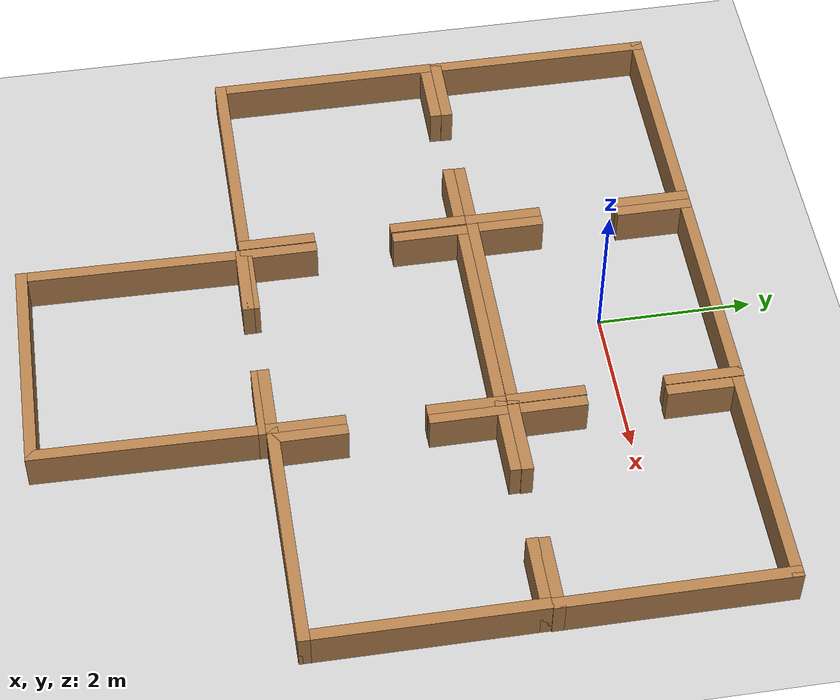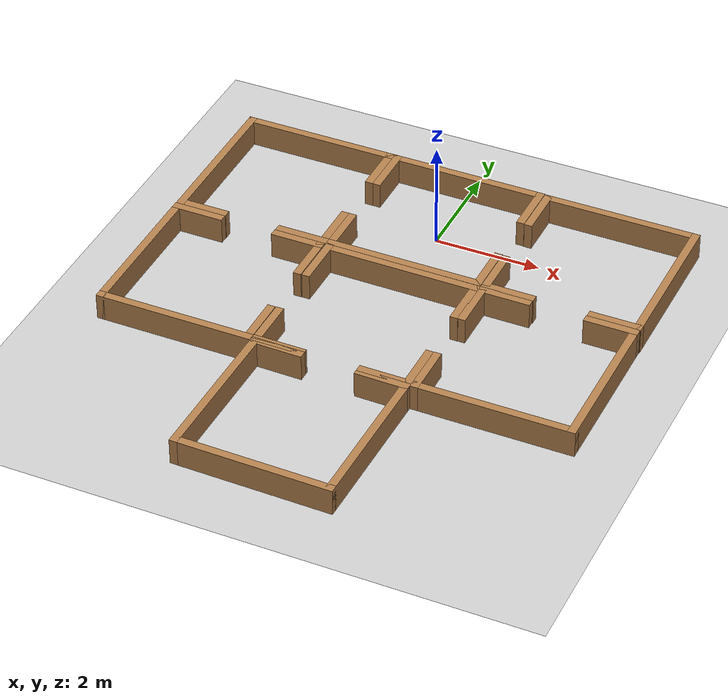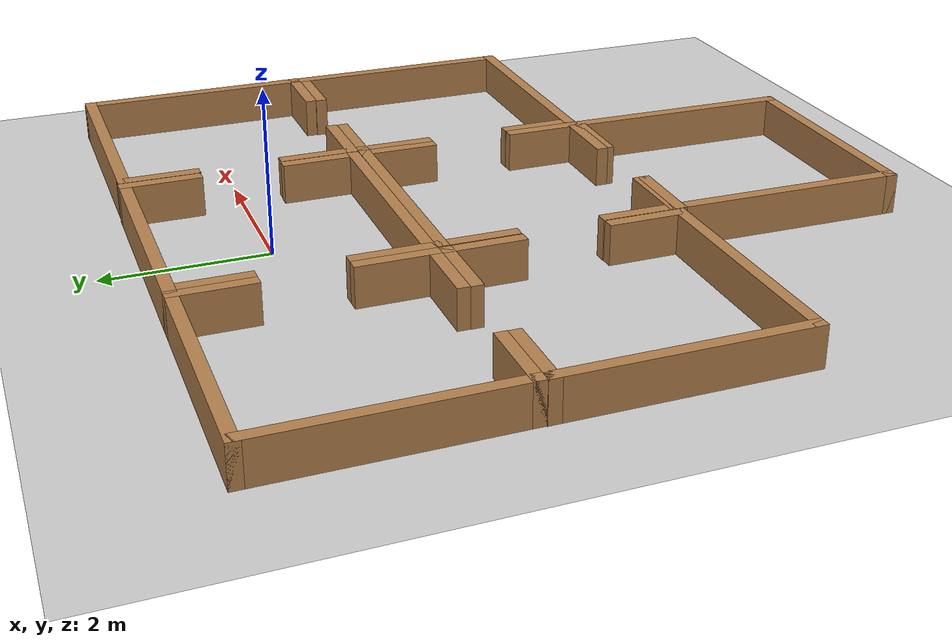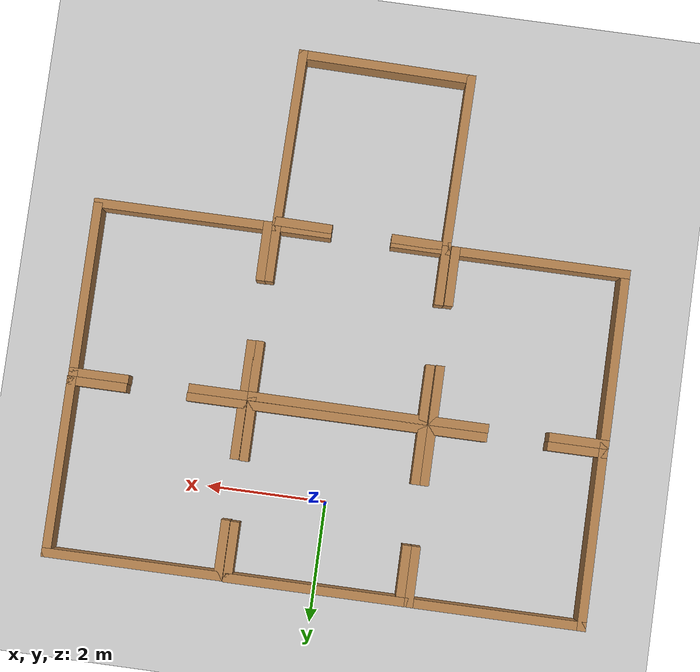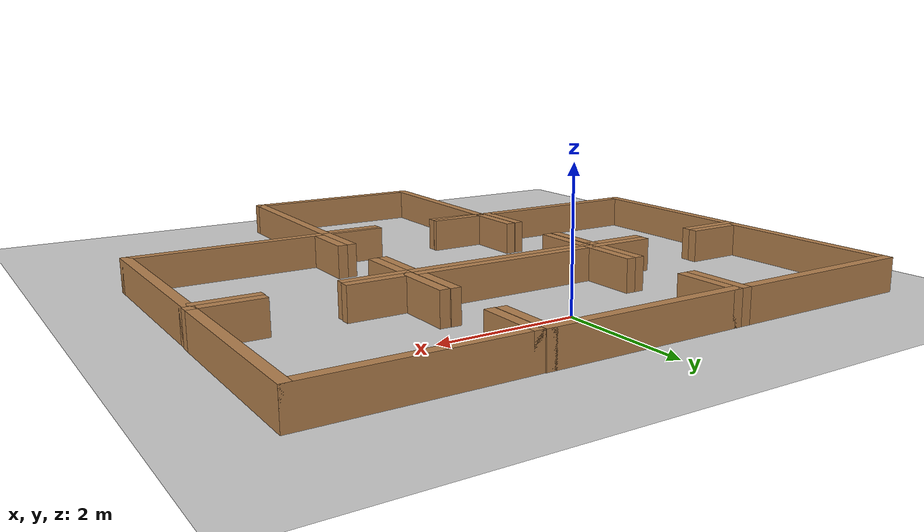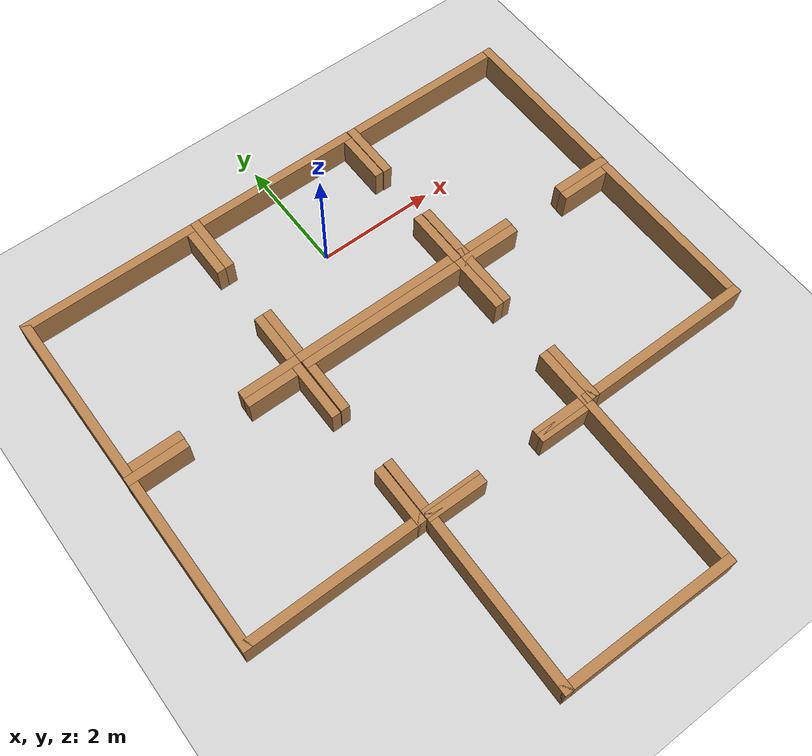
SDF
<sdf version="1.7">
 <world name="default">
  <light name="sun" type="directional">
   <pose>0 0 10 0 -0 0</pose>
   <diffuse>0.8 0.8 0.8 1</diffuse>
   <specular>0.2 0.2 0.2 1</specular>
   <attenuation>
    <range>1000</range>
    <constant>0.9</constant>
    <linear>0.01</linear>
    <quadratic>0.001</quadratic>
   </attenuation>
   <direction>-0.5 0.1 -0.9</direction>
   <spot><inner_angle>0</inner_angle><outer_angle>0</outer_angle><falloff>0</falloff></spot>
  </light>
  <model name="ground_plane">
   <static>1</static>
   <link name="link">
    <collision name="collision">
     <geometry><plane><normal>0 0 1</normal><size>100 100</size></plane></geometry>
     <surface>
      <contact><collide_bitmask>65535</collide_bitmask></contact>
      <friction><ode><mu>100</mu><mu2>50</mu2></ode></friction>
     </surface>
    </collision>
    <visual name="visual">
     <cast_shadows>0</cast_shadows>
     <geometry><plane><normal>0 0 1</normal><size>100 100</size></plane></geometry>
     <material>
      <script><uri>file://media/materials/scripts/gazebo.material</uri><name>Gazebo/Grey</name></script>
     </material>
    </visual>
   </link>
  </model>
  <physics type="ode">
   <real_time_update_rate>1000</real_time_update_rate>
   <max_step_size>0.001</max_step_size>
   <real_time_factor>1</real_time_factor>
   <ode>
    <solver>
     <type>quick</type>
     <iters>150</iters>
     <precon_iters>0</precon_iters>
     <sor>1.4</sor>
     <use_dynamic_moi_rescaling>1</use_dynamic_moi_rescaling>
    </solver>
    <constraints>
     <cfm>1e-05</cfm>
     <erp>0.2</erp>
     <contact_max_correcting_vel>2000</contact_max_correcting_vel>
     <contact_surface_layer>0.01</contact_surface_layer>
    </constraints>
   </ode>
  </physics>
  <model name="s_0_0">
   <link name="Wall_0">
    <collision name="Wall_0_Collision">
     <geometry><box><size>3 0.15 0.5</size></box></geometry>
     <pose>0 0 0.25 0 -0 0</pose>
    </collision>
    <visual name="Wall_0_Visual">
     <pose>0 0 0.25 0 -0 0</pose>
     <geometry><box><size>3 0.15 0.5</size></box></geometry>
     <material>
      <script><uri>file://media/materials/scripts/gazebo.material</uri><name>Gazebo/Wood</name></script>
      <ambient>1 1 1 1</ambient>
     </material>
    </visual>
    <pose>0 1.425 0 0 -0 0</pose>
   </link>
   <link name="Wall_2">
    <collision name="Wall_2_Collision">
     <geometry><box><size>1 0.15 0.5</size></box></geometry>
     <pose>0 0 0.25 0 -0 0</pose>
    </collision>
    <visual name="Wall_2_Visual">
     <pose>0 0 0.25 0 -0 0</pose>
     <geometry><box><size>1 0.15 0.5</size></box></geometry>
     <material>
      <script><uri>file://media/materials/scripts/gazebo.material</uri><name>Gazebo/Wood</name></script>
      <ambient>1 1 1 1</ambient>
     </material>
    </visual>
    <pose>-1.425 -1 0 0 0 -1.5708</pose>
   </link>
   <link name="Wall_2a">
    <collision name="Wall_2a_Collision">
     <geometry><box><size>1 0.15 0.5</size></box></geometry>
     <pose>0 0 0.25 0 -0 0</pose>
    </collision>
    <visual name="Wall_2a_Visual">
     <pose>0 0 0.25 0 -0 0</pose>
     <geometry><box><size>1 0.15 0.5</size></box></geometry>
     <material>
      <script><uri>file://media/materials/scripts/gazebo.material</uri><name>Gazebo/Wood</name></script>
      <ambient>1 1 1 1</ambient>
     </material>
    </visual>
    <pose>-1.425 1 0 0 0 -1.5708</pose>
   </link>
   <link name="Wall_3">
    <collision name="Wall_3_Collision">
     <geometry><box><size>3 0.15 0.5</size></box></geometry>
     <pose>0 0 0.25 0 -0 0</pose>
    </collision>
    <visual name="Wall_3_Visual">
     <pose>0 0 0.25 0 -0 0</pose>
     <geometry><box><size>3 0.15 0.5</size></box></geometry>
     <material>
      <script><uri>file://media/materials/scripts/gazebo.material</uri><name>Gazebo/Wood</name></script>
      <ambient>1 1 1 1</ambient>
     </material>
    </visual>
    <pose>0 -1.425 0 0 -0 0</pose>
   </link>
   <link name="Wall_4">
    <collision name="Wall_4_Collision">
     <geometry><box><size>1 0.15 0.5</size></box></geometry>
     <pose>0 0 0.25 0 -0 0</pose>
    </collision>
    <visual name="Wall_4_Visual">
     <pose>0 0 0.25 0 -0 0</pose>
     <geometry><box><size>1 0.15 0.5</size></box></geometry>
     <material>
      <script><uri>file://media/materials/scripts/gazebo.material</uri><name>Gazebo/Wood</name></script>
      <ambient>1 1 1 1</ambient>
     </material>
    </visual>
    <pose>1.425 -1 0 0 -0 1.5708</pose>
   </link>
   <link name="Wall_4a">
    <collision name="Wall_4a_Collision">
     <geometry><box><size>1 0.15 0.5</size></box></geometry>
     <pose>0 0 0.25 0 -0 0</pose>
    </collision>
    <visual name="Wall_4a_Visual">
     <pose>0 0 0.25 0 -0 0</pose>
     <geometry><box><size>1 0.15 0.5</size></box></geometry>
     <material>
      <script><uri>file://media/materials/scripts/gazebo.material</uri><name>Gazebo/Wood</name></script>
      <ambient>1 1 1 1</ambient>
     </material>
    </visual>
    <pose>1.425 1 0 0 -0 1.5708</pose>
   </link>
   <static>1</static>
  </model>
  <model name="s_6_0">
   <pose>3.00646 -0.009727 0 0 -0 3.14159</pose>
   <link name="Wall_0">
    <collision name="Wall_0_Collision">
     <geometry><box><size>1 0.15 0.5</size></box></geometry>
     <pose>0 0 0.25 0 -0 0</pose>
    </collision>
    <visual name="Wall_0_Visual">
     <pose>0 0 0.25 0 -0 0</pose>
     <geometry><box><size>1 0.15 0.5</size></box></geometry>
     <material>
      <script><uri>file://media/materials/scripts/gazebo.material</uri><name>Gazebo/Wood</name></script>
      <ambient>1 1 1 1</ambient>
     </material>
    </visual>
    <pose>-1 1.425 0 0 -0 0</pose>
   </link>
   <link name="Wall_0a">
    <collision name="Wall_0a_Collision">
     <geometry><box><size>1 0.15 0.5</size></box></geometry>
     <pose>0 0 0.25 0 -0 0</pose>
    </collision>
    <visual name="Wall_0a_Visual">
     <pose>0 0 0.25 0 -0 0</pose>
     <geometry><box><size>1 0.15 0.5</size></box></geometry>
     <material>
      <script><uri>file://media/materials/scripts/gazebo.material</uri><name>Gazebo/Wood</name></script>
      <ambient>1 1 1 1</ambient>
     </material>
    </visual>
    <pose>1 1.425 0 0 -0 0</pose>
   </link>
   <link name="Wall_2">
    <collision name="Wall_2_Collision">
     <geometry><box><size>3 0.15 0.5</size></box></geometry>
     <pose>0 0 0.25 0 -0 0</pose>
    </collision>
    <visual name="Wall_2_Visual">
     <pose>0 0 0.25 0 -0 0</pose>
     <geometry><box><size>3 0.15 0.5</size></box></geometry>
     <material>
      <script><uri>file://media/materials/scripts/gazebo.material</uri><name>Gazebo/Wood</name></script>
      <ambient>1 1 1 1</ambient>
     </material>
    </visual>
    <pose>-1.425 0 0 0 0 -1.5708</pose>
   </link>
   <link name="Wall_3">
    <collision name="Wall_3_Collision">
     <geometry><box><size>3 0.15 0.5</size></box></geometry>
     <pose>0 0 0.25 0 -0 0</pose>
    </collision>
    <visual name="Wall_3_Visual">
     <pose>0 0 0.25 0 -0 0</pose>
     <geometry><box><size>3 0.15 0.5</size></box></geometry>
     <material>
      <script><uri>file://media/materials/scripts/gazebo.material</uri><name>Gazebo/Wood</name></script>
      <ambient>1 1 1 1</ambient>
     </material>
    </visual>
    <pose>0 -1.425 0 0 -0 0</pose>
   </link>
   <link name="Wall_4">
    <collision name="Wall_4_Collision">
     <geometry><box><size>1 0.15 0.5</size></box></geometry>
     <pose>0 0 0.25 0 -0 0</pose>
    </collision>
    <visual name="Wall_4_Visual">
     <pose>0 0 0.25 0 -0 0</pose>
     <geometry><box><size>1 0.15 0.5</size></box></geometry>
     <material>
      <script><uri>file://media/materials/scripts/gazebo.material</uri><name>Gazebo/Wood</name></script>
      <ambient>1 1 1 1</ambient>
     </material>
    </visual>
    <pose>1.425 -1 0 0 -0 1.5708</pose>
   </link>
   <link name="Wall_4a">
    <collision name="Wall_4a_Collision">
     <geometry><box><size>1 0.15 0.5</size></box></geometry>
     <pose>0 0 0.25 0 -0 0</pose>
    </collision>
    <visual name="Wall_4a_Visual">
     <pose>0 0 0.25 0 -0 0</pose>
     <geometry><box><size>1 0.15 0.5</size></box></geometry>
     <material>
      <script><uri>file://media/materials/scripts/gazebo.material</uri><name>Gazebo/Wood</name></script>
      <ambient>1 1 1 1</ambient>
     </material>
    </visual>
    <pose>1.425 1 0 0 -0 1.5708</pose>
   </link>
   <static>1</static>
  </model>
  <model name="s_6_n9">
   <pose>2.99595 -2.9992 0 0 -0 1.5708</pose>
   <link name="Wall_0">
    <collision name="Wall_0_Collision">
     <geometry><box><size>1 0.15 0.5</size></box></geometry>
     <pose>0 0 0.25 0 -0 0</pose>
    </collision>
    <visual name="Wall_0_Visual">
     <pose>0 0 0.25 0 -0 0</pose>
     <geometry><box><size>1 0.15 0.5</size></box></geometry>
     <material>
      <script><uri>file://media/materials/scripts/gazebo.material</uri><name>Gazebo/Wood</name></script>
      <ambient>1 1 1 1</ambient>
     </material>
    </visual>
    <pose>-1 1.425 0 0 -0 0</pose>
   </link>
   <link name="Wall_0a">
    <collision name="Wall_0a_Collision">
     <geometry><box><size>1 0.15 0.5</size></box></geometry>
     <pose>0 0 0.25 0 -0 0</pose>
    </collision>
    <visual name="Wall_0a_Visual">
     <pose>0 0 0.25 0 -0 0</pose>
     <geometry><box><size>1 0.15 0.5</size></box></geometry>
     <material>
      <script><uri>file://media/materials/scripts/gazebo.material</uri><name>Gazebo/Wood</name></script>
      <ambient>1 1 1 1</ambient>
     </material>
    </visual>
    <pose>1 1.425 0 0 -0 0</pose>
   </link>
   <link name="Wall_2">
    <collision name="Wall_2_Collision">
     <geometry><box><size>3 0.15 0.5</size></box></geometry>
     <pose>0 0 0.25 0 -0 0</pose>
    </collision>
    <visual name="Wall_2_Visual">
     <pose>0 0 0.25 0 -0 0</pose>
     <geometry><box><size>3 0.15 0.5</size></box></geometry>
     <material>
      <script><uri>file://media/materials/scripts/gazebo.material</uri><name>Gazebo/Wood</name></script>
      <ambient>1 1 1 1</ambient>
     </material>
    </visual>
    <pose>-1.425 0 0 0 0 -1.5708</pose>
   </link>
   <link name="Wall_3">
    <collision name="Wall_3_Collision">
     <geometry><box><size>3 0.15 0.5</size></box></geometry>
     <pose>0 0 0.25 0 -0 0</pose>
    </collision>
    <visual name="Wall_3_Visual">
     <pose>0 0 0.25 0 -0 0</pose>
     <geometry><box><size>3 0.15 0.5</size></box></geometry>
     <material>
      <script><uri>file://media/materials/scripts/gazebo.material</uri><name>Gazebo/Wood</name></script>
      <ambient>1 1 1 1</ambient>
     </material>
    </visual>
    <pose>0 -1.425 0 0 -0 0</pose>
   </link>
   <link name="Wall_4">
    <collision name="Wall_4_Collision">
     <geometry><box><size>1 0.15 0.5</size></box></geometry>
     <pose>0 0 0.25 0 -0 0</pose>
    </collision>
    <visual name="Wall_4_Visual">
     <pose>0 0 0.25 0 -0 0</pose>
     <geometry><box><size>1 0.15 0.5</size></box></geometry>
     <material>
      <script><uri>file://media/materials/scripts/gazebo.material</uri><name>Gazebo/Wood</name></script>
      <ambient>1 1 1 1</ambient>
     </material>
    </visual>
    <pose>1.425 -1 0 0 -0 1.5708</pose>
   </link>
   <link name="Wall_4a">
    <collision name="Wall_4a_Collision">
     <geometry><box><size>1 0.15 0.5</size></box></geometry>
     <pose>0 0 0.25 0 -0 0</pose>
    </collision>
    <visual name="Wall_4a_Visual">
     <pose>0 0 0.25 0 -0 0</pose>
     <geometry><box><size>1 0.15 0.5</size></box></geometry>
     <material>
      <script><uri>file://media/materials/scripts/gazebo.material</uri><name>Gazebo/Wood</name></script>
      <ambient>1 1 1 1</ambient>
     </material>
    </visual>
    <pose>1.425 1 0 0 -0 1.5708</pose>
   </link>
   <static>1</static>
  </model>
  <model name="s_n3_n9">
   <pose>-3.0072 -2.99933 0 0 -0 0</pose>
   <link name="Wall_0">
    <collision name="Wall_0_Collision">
     <geometry><box><size>1 0.15 0.5</size></box></geometry>
     <pose>0 0 0.25 0 -0 0</pose>
    </collision>
    <visual name="Wall_0_Visual">
     <pose>0 0 0.25 0 -0 0</pose>
     <geometry><box><size>1 0.15 0.5</size></box></geometry>
     <material>
      <script><uri>file://media/materials/scripts/gazebo.material</uri><name>Gazebo/Wood</name></script>
      <ambient>1 1 1 1</ambient>
     </material>
    </visual>
    <pose>-1 1.425 0 0 -0 0</pose>
   </link>
   <link name="Wall_0a">
    <collision name="Wall_0a_Collision">
     <geometry><box><size>1 0.15 0.5</size></box></geometry>
     <pose>0 0 0.25 0 -0 0</pose>
    </collision>
    <visual name="Wall_0a_Visual">
     <pose>0 0 0.25 0 -0 0</pose>
     <geometry><box><size>1 0.15 0.5</size></box></geometry>
     <material>
      <script><uri>file://media/materials/scripts/gazebo.material</uri><name>Gazebo/Wood</name></script>
      <ambient>1 1 1 1</ambient>
     </material>
    </visual>
    <pose>1 1.425 0 0 -0 0</pose>
   </link>
   <link name="Wall_2">
    <collision name="Wall_2_Collision">
     <geometry><box><size>3 0.15 0.5</size></box></geometry>
     <pose>0 0 0.25 0 -0 0</pose>
    </collision>
    <visual name="Wall_2_Visual">
     <pose>0 0 0.25 0 -0 0</pose>
     <geometry><box><size>3 0.15 0.5</size></box></geometry>
     <material>
      <script><uri>file://media/materials/scripts/gazebo.material</uri><name>Gazebo/Wood</name></script>
      <ambient>1 1 1 1</ambient>
     </material>
    </visual>
    <pose>-1.425 0 0 0 0 -1.5708</pose>
   </link>
   <link name="Wall_3">
    <collision name="Wall_3_Collision">
     <geometry><box><size>3 0.15 0.5</size></box></geometry>
     <pose>0 0 0.25 0 -0 0</pose>
    </collision>
    <visual name="Wall_3_Visual">
     <pose>0 0 0.25 0 -0 0</pose>
     <geometry><box><size>3 0.15 0.5</size></box></geometry>
     <material>
      <script><uri>file://media/materials/scripts/gazebo.material</uri><name>Gazebo/Wood</name></script>
      <ambient>1 1 1 1</ambient>
     </material>
    </visual>
    <pose>0 -1.425 0 0 -0 0</pose>
   </link>
   <link name="Wall_4">
    <collision name="Wall_4_Collision">
     <geometry><box><size>1 0.15 0.5</size></box></geometry>
     <pose>0 0 0.25 0 -0 0</pose>
    </collision>
    <visual name="Wall_4_Visual">
     <pose>0 0 0.25 0 -0 0</pose>
     <geometry><box><size>1 0.15 0.5</size></box></geometry>
     <material>
      <script><uri>file://media/materials/scripts/gazebo.material</uri><name>Gazebo/Wood</name></script>
      <ambient>1 1 1 1</ambient>
     </material>
    </visual>
    <pose>1.425 -1 0 0 -0 1.5708</pose>
   </link>
   <link name="Wall_4a">
    <collision name="Wall_4a_Collision">
     <geometry><box><size>1 0.15 0.5</size></box></geometry>
     <pose>0 0 0.25 0 -0 0</pose>
    </collision>
    <visual name="Wall_4a_Visual">
     <pose>0 0 0.25 0 -0 0</pose>
     <geometry><box><size>1 0.15 0.5</size></box></geometry>
     <material>
      <script><uri>file://media/materials/scripts/gazebo.material</uri><name>Gazebo/Wood</name></script>
      <ambient>1 1 1 1</ambient>
     </material>
    </visual>
    <pose>1.425 1 0 0 -0 1.5708</pose>
   </link>
   <static>1</static>
  </model>
  <model name="s_n3_0">
   <pose>-3 5e-06 0 0 0 -1.5708</pose>
   <link name="Wall_0">
    <collision name="Wall_0_Collision">
     <geometry><box><size>1 0.15 0.5</size></box></geometry>
     <pose>0 0 0.25 0 -0 0</pose>
    </collision>
    <visual name="Wall_0_Visual">
     <pose>0 0 0.25 0 -0 0</pose>
     <geometry><box><size>1 0.15 0.5</size></box></geometry>
     <material>
      <script><uri>file://media/materials/scripts/gazebo.material</uri><name>Gazebo/Wood</name></script>
      <ambient>1 1 1 1</ambient>
     </material>
    </visual>
    <pose>-1 1.425 0 0 -0 0</pose>
   </link>
   <link name="Wall_0a">
    <collision name="Wall_0a_Collision">
     <geometry><box><size>1 0.15 0.5</size></box></geometry>
     <pose>0 0 0.25 0 -0 0</pose>
    </collision>
    <visual name="Wall_0a_Visual">
     <pose>0 0 0.25 0 -0 0</pose>
     <geometry><box><size>1 0.15 0.5</size></box></geometry>
     <material>
      <script><uri>file://media/materials/scripts/gazebo.material</uri><name>Gazebo/Wood</name></script>
      <ambient>1 1 1 1</ambient>
     </material>
    </visual>
    <pose>1 1.425 0 0 -0 0</pose>
   </link>
   <link name="Wall_2">
    <collision name="Wall_2_Collision">
     <geometry><box><size>3 0.15 0.5</size></box></geometry>
     <pose>0 0 0.25 0 -0 0</pose>
    </collision>
    <visual name="Wall_2_Visual">
     <pose>0 0 0.25 0 -0 0</pose>
     <geometry><box><size>3 0.15 0.5</size></box></geometry>
     <material>
      <script><uri>file://media/materials/scripts/gazebo.material</uri><name>Gazebo/Wood</name></script>
      <ambient>1 1 1 1</ambient>
     </material>
    </visual>
    <pose>-1.425 0 0 0 0 -1.5708</pose>
   </link>
   <link name="Wall_3">
    <collision name="Wall_3_Collision">
     <geometry><box><size>3 0.15 0.5</size></box></geometry>
     <pose>0 0 0.25 0 -0 0</pose>
    </collision>
    <visual name="Wall_3_Visual">
     <pose>0 0 0.25 0 -0 0</pose>
     <geometry><box><size>3 0.15 0.5</size></box></geometry>
     <material>
      <script><uri>file://media/materials/scripts/gazebo.material</uri><name>Gazebo/Wood</name></script>
      <ambient>1 1 1 1</ambient>
     </material>
    </visual>
    <pose>0 -1.425 0 0 -0 0</pose>
   </link>
   <link name="Wall_4">
    <collision name="Wall_4_Collision">
     <geometry><box><size>1 0.15 0.5</size></box></geometry>
     <pose>0 0 0.25 0 -0 0</pose>
    </collision>
    <visual name="Wall_4_Visual">
     <pose>0 0 0.25 0 -0 0</pose>
     <geometry><box><size>1 0.15 0.5</size></box></geometry>
     <material>
      <script><uri>file://media/materials/scripts/gazebo.material</uri><name>Gazebo/Wood</name></script>
      <ambient>1 1 1 1</ambient>
     </material>
    </visual>
    <pose>1.425 -1 0 0 -0 1.5708</pose>
   </link>
   <link name="Wall_4a">
    <collision name="Wall_4a_Collision">
     <geometry><box><size>1 0.15 0.5</size></box></geometry>
     <pose>0 0 0.25 0 -0 0</pose>
    </collision>
    <visual name="Wall_4a_Visual">
     <pose>0 0 0.25 0 -0 0</pose>
     <geometry><box><size>1 0.15 0.5</size></box></geometry>
     <material>
      <script><uri>file://media/materials/scripts/gazebo.material</uri><name>Gazebo/Wood</name></script>
      <ambient>1 1 1 1</ambient>
     </material>
    </visual>
    <pose>1.425 1 0 0 -0 1.5708</pose>
   </link>
   <static>1</static>
  </model>
  <scene><ambient>0.4 0.4 0.4 1</ambient><background>0.7 0.7 0.7 1</background><shadows>1</shadows></scene>
  <gravity>0 0 -9.8</gravity>
  <magnetic_field>6e-06 2.3e-05 -4.2e-05</magnetic_field>
  <atmosphere type="adiabatic"/>
  <spherical_coordinates>
   <surface_model>EARTH_WGS84</surface_model>
   <latitude_deg>0</latitude_deg>
   <longitude_deg>0</longitude_deg>
   <elevation>0</elevation>
   <heading_deg>0</heading_deg>
  </spherical_coordinates>
  <model name="square_3_d">
   <pose>-0.02028 -5.92403 0 0 -0 1.55558</pose>
   <link name="Wall_0">
    <collision name="Wall_0_Collision">
     <geometry><box><size>3 0.15 0.5</size></box></geometry>
     <pose>0 0 0.25 0 -0 0</pose>
    </collision>
    <visual name="Wall_0_Visual">
     <pose>0 0 0.25 0 -0 0</pose>
     <geometry><box><size>3 0.15 0.5</size></box></geometry>
     <material>
      <script><uri>file://media/materials/scripts/gazebo.material</uri><name>Gazebo/Wood</name></script>
      <ambient>1 1 1 1</ambient>
     </material>
    </visual>
    <pose>0 1.425 0 0 -0 0</pose>
   </link>
   <link name="Wall_2">
    <collision name="Wall_2_Collision">
     <geometry><box><size>3 0.15 0.5</size></box></geometry>
     <pose>0 0 0.25 0 -0 0</pose>
    </collision>
    <visual name="Wall_2_Visual">
     <pose>0 0 0.25 0 -0 0</pose>
     <geometry><box><size>3 0.15 0.5</size></box></geometry>
     <material>
      <script><uri>file://media/materials/scripts/gazebo.material</uri><name>Gazebo/Wood</name></script>
      <ambient>1 1 1 1</ambient>
     </material>
    </visual>
    <pose>-1.425 0 0 0 0 -1.5708</pose>
   </link>
   <link name="Wall_3">
    <collision name="Wall_3_Collision">
     <geometry><box><size>3 0.15 0.5</size></box></geometry>
     <pose>0 0 0.25 0 -0 0</pose>
    </collision>
    <visual name="Wall_3_Visual">
     <pose>0 0 0.25 0 -0 0</pose>
     <geometry><box><size>3 0.15 0.5</size></box></geometry>
     <material>
      <script><uri>file://media/materials/scripts/gazebo.material</uri><name>Gazebo/Wood</name></script>
      <ambient>1 1 1 1</ambient>
     </material>
    </visual>
    <pose>0 -1.425 0 0 -0 0</pose>
   </link>
   <link name="Wall_4">
    <collision name="Wall_4_Collision">
     <geometry><box><size>1 0.15 0.5</size></box></geometry>
     <pose>0 0 0.25 0 -0 0</pose>
    </collision>
    <visual name="Wall_4_Visual">
     <pose>0 0 0.25 0 -0 0</pose>
     <geometry><box><size>1 0.15 0.5</size></box></geometry>
     <material>
      <script><uri>file://media/materials/scripts/gazebo.material</uri><name>Gazebo/Wood</name></script>
      <ambient>1 1 1 1</ambient>
     </material>
    </visual>
    <pose>1.425 -1 0 0 -0 1.5708</pose>
   </link>
   <link name="Wall_4a">
    <collision name="Wall_4_Collision">
     <geometry><box><size>1 0.15 0.5</size></box></geometry>
     <pose>0 0 0.25 0 -0 0</pose>
    </collision>
    <visual name="Wall_4a_Visual">
     <pose>0 0 0.25 0 -0 0</pose>
     <geometry><box><size>1 0.15 0.5</size></box></geometry>
     <material>
      <script><uri>file://media/materials/scripts/gazebo.material</uri><name>Gazebo/Wood</name></script>
      <ambient>1 1 1 1</ambient>
     </material>
    </visual>
    <pose>1.425 1 0 0 -0 1.5708</pose>
   </link>
   <static>1</static>
  </model>
  <model name="square_3_t">
   <pose>0.005741 -2.99751 0 0 -0 1.5671</pose>
   <link name="Wall_0">
    <collision name="Wall_0_Collision">
     <geometry><box><size>1 0.15 0.5</size></box></geometry>
     <pose>0 0 0.25 0 -0 0</pose>
    </collision>
    <visual name="Wall_0_Visual">
     <pose>0 0 0.25 0 -0 0</pose>
     <geometry><box><size>1 0.15 0.5</size></box></geometry>
     <material>
      <script><uri>file://media/materials/scripts/gazebo.material</uri><name>Gazebo/Wood</name></script>
      <ambient>1 1 1 1</ambient>
     </material>
    </visual>
    <pose>-1 1.425 0 0 -0 0</pose>
   </link>
   <link name="Wall_0a">
    <collision name="Wall_0a_Collision">
     <geometry><box><size>1 0.15 0.5</size></box></geometry>
     <pose>0 0 0.25 0 -0 0</pose>
    </collision>
    <visual name="Wall_0a_Visual">
     <pose>0 0 0.25 0 -0 0</pose>
     <geometry><box><size>1 0.15 0.5</size></box></geometry>
     <material>
      <script><uri>file://media/materials/scripts/gazebo.material</uri><name>Gazebo/Wood</name></script>
      <ambient>1 1 1 1</ambient>
     </material>
    </visual>
    <pose>1 1.425 0 0 -0 0</pose>
   </link>
   <link name="Wall_2">
    <collision name="Wall_2_Collision">
     <geometry><box><size>1 0.15 0.5</size></box></geometry>
     <pose>0 0 0.25 0 -0 0</pose>
    </collision>
    <visual name="Wall_2_Visual">
     <pose>0 0 0.25 0 -0 0</pose>
     <geometry><box><size>1 0.15 0.5</size></box></geometry>
     <material>
      <script><uri>file://media/materials/scripts/gazebo.material</uri><name>Gazebo/Wood</name></script>
      <ambient>1 1 1 1</ambient>
     </material>
    </visual>
    <pose>-1.425 -1 0 0 0 -1.5708</pose>
   </link>
   <link name="Wall_2a">
    <collision name="Wall_2a_Collision">
     <geometry><box><size>1 0.15 0.5</size></box></geometry>
     <pose>0 0 0.25 0 -0 0</pose>
    </collision>
    <visual name="Wall_2a_Visual">
     <pose>0 0 0.25 0 -0 0</pose>
     <geometry><box><size>1 0.15 0.5</size></box></geometry>
     <material>
      <script><uri>file://media/materials/scripts/gazebo.material</uri><name>Gazebo/Wood</name></script>
      <ambient>1 1 1 1</ambient>
     </material>
    </visual>
    <pose>-1.425 1 0 0 0 -1.5708</pose>
   </link>
   <link name="Wall_3">
    <collision name="Wall_3_Collision">
     <geometry><box><size>1 0.15 0.5</size></box></geometry>
     <pose>0 0 0.25 0 -0 0</pose>
    </collision>
    <visual name="Wall_3_Visual">
     <pose>0 0 0.25 0 -0 0</pose>
     <geometry><box><size>1 0.15 0.5</size></box></geometry>
     <material>
      <script><uri>file://media/materials/scripts/gazebo.material</uri><name>Gazebo/Wood</name></script>
      <ambient>1 1 1 1</ambient>
     </material>
    </visual>
    <pose>-1 -1.425 0 0 -0 0</pose>
   </link>
   <link name="Wall_3a">
    <collision name="Wall_3a_Collision">
     <geometry><box><size>1 0.15 0.5</size></box></geometry>
     <pose>0 0 0.25 0 -0 0</pose>
    </collision>
    <visual name="Wall_3a_Visual">
     <pose>0 0 0.25 0 -0 0</pose>
     <geometry><box><size>1 0.15 0.5</size></box></geometry>
     <material>
      <script><uri>file://media/materials/scripts/gazebo.material</uri><name>Gazebo/Wood</name></script>
      <ambient>1 1 1 1</ambient>
     </material>
    </visual>
    <pose>1 -1.425 0 0 -0 0</pose>
   </link>
   <link name="Wall_4">
    <collision name="Wall_4_Collision">
     <geometry><box><size>3 0.15 0.5</size></box></geometry>
     <pose>0 0 0.25 0 -0 0</pose>
    </collision>
    <visual name="Wall_4_Visual">
     <pose>0 0 0.25 0 -0 0</pose>
     <geometry><box><size>3 0.15 0.5</size></box></geometry>
     <material>
      <script><uri>file://media/materials/scripts/gazebo.material</uri><name>Gazebo/Wood</name></script>
      <ambient>1 1 1 1</ambient>
     </material>
    </visual>
    <pose>1.425 0 0 0 -0 1.5708</pose>
   </link>
   <static>1</static>
  </model>
 </world>
</sdf>
